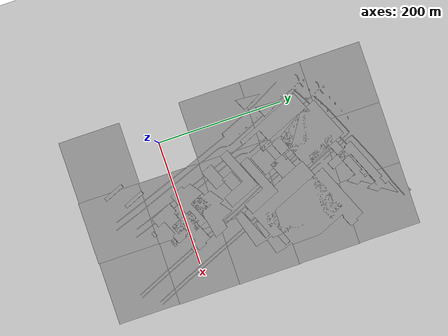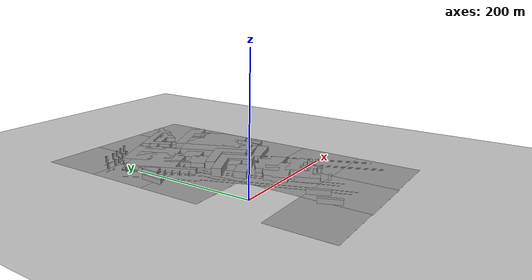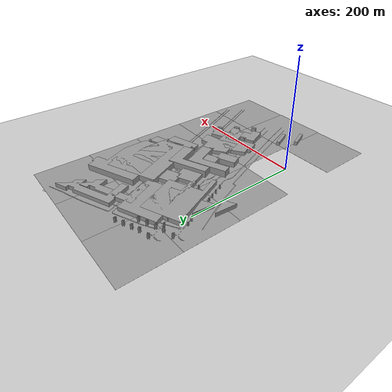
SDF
<sdf version="1.6">
 <world name="default">
  <light name="sun" type="directional">
   <pose>0 0 10 0 -0 0</pose>
   <diffuse>0.8 0.8 0.8 1</diffuse>
   <specular>0.2 0.2 0.2 1</specular>
   <attenuation>
    <range>1000</range>
    <constant>0.9</constant>
    <linear>0.01</linear>
    <quadratic>0.001</quadratic>
   </attenuation>
   <direction>-0.5 0.1 -0.9</direction>
  </light>
  <model name="ground_plane">
   <static>1</static>
   <link name="link">
    <collision name="collision">
     <geometry><plane><normal>0 0 1</normal><size>100 100</size></plane></geometry>
     <surface>
      <contact><collide_bitmask>65535</collide_bitmask></contact>
      <friction><ode><mu>100</mu><mu2>50</mu2></ode></friction>
     </surface>
    </collision>
    <visual name="visual">
     <cast_shadows>0</cast_shadows>
     <geometry><plane><normal>0 0 1</normal><size>100 100</size></plane></geometry>
     <material>
      <script><uri>file://media/materials/scripts/gazebo.material</uri><name>Gazebo/Grey</name></script>
     </material>
    </visual>
   </link>
  </model>
  <gravity>0 0 -9.8</gravity>
  <magnetic_field>6e-06 2.3e-05 -4.2e-05</magnetic_field>
  <atmosphere type="adiabatic"/>
  <physics name="default_physics" default="0" type="ode">
   <max_step_size>0.001</max_step_size>
   <real_time_factor>1</real_time_factor>
   <real_time_update_rate>1000</real_time_update_rate>
  </physics>
  <scene><ambient>0.4 0.4 0.4 1</ambient><background>0.7 0.7 0.7 1</background><shadows>1</shadows></scene>
  <audio><device>default</device></audio>
  <spherical_coordinates>
   <surface_model>EARTH_WGS84</surface_model>
   <latitude_deg>0</latitude_deg>
   <longitude_deg>0</longitude_deg>
   <elevation>0</elevation>
   <heading_deg>0</heading_deg>
  </spherical_coordinates>
  <model name="ground_plane_0">
   <static>1</static>
   <link name="link">
    <collision name="collision">
     <geometry><plane><normal>0 0 1</normal><size>100 100</size></plane></geometry>
     <surface>
      <contact><collide_bitmask>65535</collide_bitmask></contact>
      <friction><ode><mu>100</mu><mu2>50</mu2></ode></friction>
     </surface>
    </collision>
    <visual name="visual">
     <cast_shadows>0</cast_shadows>
     <geometry><plane><normal>0 0 1</normal><size>100 100</size></plane></geometry>
     <material>
      <script><uri>file://media/materials/scripts/gazebo.material</uri><name>Gazebo/Grey</name></script>
     </material>
    </visual>
   </link>
   <pose>0.119085 98.7504 0 0 -0 0</pose>
  </model>
  <model name="ground_plane_1">
   <static>1</static>
   <link name="link">
    <collision name="collision">
     <geometry><plane><normal>0 0 1</normal><size>100 100</size></plane></geometry>
     <surface>
      <contact><collide_bitmask>65535</collide_bitmask></contact>
      <friction><ode><mu>100</mu><mu2>50</mu2></ode></friction>
     </surface>
    </collision>
    <visual name="visual">
     <cast_shadows>0</cast_shadows>
     <geometry><plane><normal>0 0 1</normal><size>100 100</size></plane></geometry>
     <material>
      <script><uri>file://media/materials/scripts/gazebo.material</uri><name>Gazebo/Grey</name></script>
     </material>
    </visual>
   </link>
   <pose>0.157574 198.301 0 0 -0 0</pose>
  </model>
  <model name="ground_plane_2">
   <static>1</static>
   <link name="link">
    <collision name="collision">
     <geometry><plane><normal>0 0 1</normal><size>100 100</size></plane></geometry>
     <surface>
      <contact><collide_bitmask>65535</collide_bitmask></contact>
      <friction><ode><mu>100</mu><mu2>50</mu2></ode></friction>
     </surface>
    </collision>
    <visual name="visual">
     <cast_shadows>0</cast_shadows>
     <geometry><plane><normal>0 0 1</normal><size>100 100</size></plane></geometry>
     <material>
      <script><uri>file://media/materials/scripts/gazebo.material</uri><name>Gazebo/Grey</name></script>
     </material>
    </visual>
   </link>
   <pose>100.31 198.23 0 0 -0 0</pose>
  </model>
  <model name="ground_plane_3">
   <static>1</static>
   <link name="link">
    <collision name="collision">
     <geometry><plane><normal>0 0 1</normal><size>100 100</size></plane></geometry>
     <surface>
      <contact><collide_bitmask>65535</collide_bitmask></contact>
      <friction><ode><mu>100</mu><mu2>50</mu2></ode></friction>
     </surface>
    </collision>
    <visual name="visual">
     <cast_shadows>0</cast_shadows>
     <geometry><plane><normal>0 0 1</normal><size>100 100</size></plane></geometry>
     <material>
      <script><uri>file://media/materials/scripts/gazebo.material</uri><name>Gazebo/Grey</name></script>
     </material>
    </visual>
   </link>
   <pose>100.14 98.3684 0 0 -0 0</pose>
  </model>
  <model name="ground_plane_4">
   <static>1</static>
   <link name="link">
    <collision name="collision">
     <geometry><plane><normal>0 0 1</normal><size>100 100</size></plane></geometry>
     <surface>
      <contact><collide_bitmask>65535</collide_bitmask></contact>
      <friction><ode><mu>100</mu><mu2>50</mu2></ode></friction>
     </surface>
    </collision>
    <visual name="visual">
     <cast_shadows>0</cast_shadows>
     <geometry><plane><normal>0 0 1</normal><size>100 100</size></plane></geometry>
     <material>
      <script><uri>file://media/materials/scripts/gazebo.material</uri><name>Gazebo/Grey</name></script>
     </material>
    </visual>
   </link>
   <pose>99.8443 -0.827048 0 0 -0 0</pose>
  </model>
  <model name="ground_plane_5">
   <static>1</static>
   <link name="link">
    <collision name="collision">
     <geometry><plane><normal>0 0 1</normal><size>100 100</size></plane></geometry>
     <surface>
      <contact><collide_bitmask>65535</collide_bitmask></contact>
      <friction><ode><mu>100</mu><mu2>50</mu2></ode></friction>
     </surface>
    </collision>
    <visual name="visual">
     <cast_shadows>0</cast_shadows>
     <geometry><plane><normal>0 0 1</normal><size>100 100</size></plane></geometry>
     <material>
      <script><uri>file://media/materials/scripts/gazebo.material</uri><name>Gazebo/Grey</name></script>
     </material>
    </visual>
   </link>
   <pose>0.076266 296.645 0 0 -0 0</pose>
  </model>
  <model name="ground_plane_6">
   <static>1</static>
   <link name="link">
    <collision name="collision">
     <geometry><plane><normal>0 0 1</normal><size>100 100</size></plane></geometry>
     <surface>
      <contact><collide_bitmask>65535</collide_bitmask></contact>
      <friction><ode><mu>100</mu><mu2>50</mu2></ode></friction>
     </surface>
    </collision>
    <visual name="visual">
     <cast_shadows>0</cast_shadows>
     <geometry><plane><normal>0 0 1</normal><size>100 100</size></plane></geometry>
     <material>
      <script><uri>file://media/materials/scripts/gazebo.material</uri><name>Gazebo/Grey</name></script>
     </material>
    </visual>
   </link>
   <pose>99.4067 296.539 0 0 -0 0</pose>
  </model>
  <model name="ground_plane_7">
   <static>1</static>
   <link name="link">
    <collision name="collision">
     <geometry><plane><normal>0 0 1</normal><size>100 100</size></plane></geometry>
     <surface>
      <contact><collide_bitmask>65535</collide_bitmask></contact>
      <friction><ode><mu>100</mu><mu2>50</mu2></ode></friction>
     </surface>
    </collision>
    <visual name="visual">
     <cast_shadows>0</cast_shadows>
     <geometry><plane><normal>0 0 1</normal><size>100 100</size></plane></geometry>
     <material>
      <script><uri>file://media/materials/scripts/gazebo.material</uri><name>Gazebo/Grey</name></script>
     </material>
    </visual>
   </link>
   <pose>198.816 296.471 0 0 -0 0</pose>
  </model>
  <model name="ground_plane_8">
   <static>1</static>
   <link name="link">
    <collision name="collision">
     <geometry><plane><normal>0 0 1</normal><size>100 100</size></plane></geometry>
     <surface>
      <contact><collide_bitmask>65535</collide_bitmask></contact>
      <friction><ode><mu>100</mu><mu2>50</mu2></ode></friction>
     </surface>
    </collision>
    <visual name="visual">
     <cast_shadows>0</cast_shadows>
     <geometry><plane><normal>0 0 1</normal><size>100 100</size></plane></geometry>
     <material>
      <script><uri>file://media/materials/scripts/gazebo.material</uri><name>Gazebo/Grey</name></script>
     </material>
    </visual>
   </link>
   <pose>199.561 197.217 0 0 -0 0</pose>
  </model>
  <model name="ground_plane_9">
   <static>1</static>
   <link name="link">
    <collision name="collision">
     <geometry><plane><normal>0 0 1</normal><size>100 100</size></plane></geometry>
     <surface>
      <contact><collide_bitmask>65535</collide_bitmask></contact>
      <friction><ode><mu>100</mu><mu2>50</mu2></ode></friction>
     </surface>
    </collision>
    <visual name="visual">
     <cast_shadows>0</cast_shadows>
     <geometry><plane><normal>0 0 1</normal><size>100 100</size></plane></geometry>
     <material>
      <script><uri>file://media/materials/scripts/gazebo.material</uri><name>Gazebo/Grey</name></script>
     </material>
    </visual>
   </link>
   <pose>200.091 98.6968 0 0 -0 0</pose>
  </model>
  <model name="ground_plane_10">
   <static>1</static>
   <link name="link">
    <collision name="collision">
     <geometry><plane><normal>0 0 1</normal><size>100 100</size></plane></geometry>
     <surface>
      <contact><collide_bitmask>65535</collide_bitmask></contact>
      <friction><ode><mu>100</mu><mu2>50</mu2></ode></friction>
     </surface>
    </collision>
    <visual name="visual">
     <cast_shadows>0</cast_shadows>
     <geometry><plane><normal>0 0 1</normal><size>100 100</size></plane></geometry>
     <material>
      <script><uri>file://media/materials/scripts/gazebo.material</uri><name>Gazebo/Grey</name></script>
     </material>
    </visual>
   </link>
   <pose>199.796 -0.195624 0 0 -0 0</pose>
  </model>
  <model name="Modelwereld2">
   <link name="link_0">
    <inertial>
     <mass>1</mass>
     <inertia>
      <ixx>0.166667</ixx>
      <ixy>0</ixy>
      <ixz>0</ixz>
      <iyy>0.166667</iyy>
      <iyz>0</iyz>
      <izz>0.166667</izz>
     </inertia>
    </inertial>
    <pose>0.000301 4.7e-05 0 0 -0 0</pose>
    <visual name="visual">
     <geometry>
      <mesh><uri>/home/roan/Documents/Minipresentatie/LwStreetCleanNN2.stl</uri><scale>1 1 1</scale></mesh>
     </geometry>
     <material>
      <lighting>1</lighting>
      <script><uri>file://media/materials/scripts/gazebo.material</uri><name>Gazebo/Grey</name></script>
     </material>
    </visual>
    <collision name="collision">
     <geometry>
      <mesh><uri>/home/roan/Documents/Minipresentatie/LwStreetCleanNN2.stl</uri><scale>1 1 1</scale></mesh>
     </geometry>
     <surface>
      <friction>
       <ode><mu>1</mu><mu2>1</mu2><fdir1>0 0 0</fdir1><slip1>0</slip1><slip2>0</slip2></ode>
       <torsional>
        <coefficient>1</coefficient>
        <patch_radius>0</patch_radius>
        <surface_radius>0</surface_radius>
        <use_patch_radius>1</use_patch_radius>
        <ode><slip>0</slip></ode>
       </torsional>
      </friction>
      <bounce><restitution_coefficient>0</restitution_coefficient><threshold>1e+06</threshold></bounce>
      <contact>
       <collide_without_contact>0</collide_without_contact>
       <collide_without_contact_bitmask>1</collide_without_contact_bitmask>
       <collide_bitmask>1</collide_bitmask>
       <ode>
        <soft_cfm>0</soft_cfm>
        <soft_erp>0.2</soft_erp>
        <kp>1e+13</kp>
        <kd>1</kd>
        <max_vel>0.01</max_vel>
        <min_depth>0</min_depth>
       </ode>
       <bullet>
        <split_impulse>1</split_impulse>
        <split_impulse_penetration_threshold>-0.01</split_impulse_penetration_threshold>
        <soft_cfm>0</soft_cfm>
        <soft_erp>0.2</soft_erp>
        <kp>1e+13</kp>
        <kd>1</kd>
       </bullet>
      </contact>
     </surface>
    </collision>
   </link>
   <static>1</static>
   <pose>302.811 97.0851 0 0 -0 0</pose>
  </model>
  <model name="ground_plane_11">
   <static>1</static>
   <link name="link">
    <collision name="collision">
     <geometry><plane><normal>0 0 1</normal><size>100 100</size></plane></geometry>
     <surface>
      <contact><collide_bitmask>65535</collide_bitmask></contact>
      <friction><ode><mu>100</mu><mu2>50</mu2></ode></friction>
     </surface>
    </collision>
    <visual name="visual">
     <cast_shadows>0</cast_shadows>
     <geometry><plane><normal>0 0 1</normal><size>100 100</size></plane></geometry>
     <material>
      <script><uri>file://media/materials/scripts/gazebo.material</uri><name>Gazebo/Grey</name></script>
     </material>
    </visual>
   </link>
   <pose>199.172 -99.3014 0 0 -0 0</pose>
  </model>
  <model name="ground_plane_12">
   <static>1</static>
   <link name="link">
    <collision name="collision">
     <geometry><plane><normal>0 0 1</normal><size>100 100</size></plane></geometry>
     <surface>
      <contact><collide_bitmask>65535</collide_bitmask></contact>
      <friction><ode><mu>100</mu><mu2>50</mu2></ode></friction>
     </surface>
    </collision>
    <visual name="visual">
     <cast_shadows>0</cast_shadows>
     <geometry><plane><normal>0 0 1</normal><size>100 100</size></plane></geometry>
     <material>
      <script><uri>file://media/materials/scripts/gazebo.material</uri><name>Gazebo/Grey</name></script>
     </material>
    </visual>
   </link>
   <pose>99.6516 -100.235 0 0 -0 0</pose>
  </model>
  <model name="ground_plane_13">
   <static>1</static>
   <link name="link">
    <collision name="collision">
     <geometry><plane><normal>0 0 1</normal><size>100 100</size></plane></geometry>
     <surface>
      <contact><collide_bitmask>65535</collide_bitmask></contact>
      <friction><ode><mu>100</mu><mu2>50</mu2></ode></friction>
     </surface>
    </collision>
    <visual name="visual">
     <cast_shadows>0</cast_shadows>
     <geometry><plane><normal>0 0 1</normal><size>100 100</size></plane></geometry>
     <material>
      <script><uri>file://media/materials/scripts/gazebo.material</uri><name>Gazebo/Grey</name></script>
     </material>
    </visual>
   </link>
   <pose>0.321798 -99.2661 0 0 -0 0</pose>
  </model>
  <model name="Untitled">
   <link name="link_0">
    <inertial>
     <mass>1</mass>
     <inertia>
      <ixx>0.166667</ixx>
      <ixy>0</ixy>
      <ixz>0</ixz>
      <iyy>0.166667</iyy>
      <iyz>0</iyz>
      <izz>0.166667</izz>
     </inertia>
    </inertial>
    <pose>0.000232 4.7e-05 0 0 -0 0</pose>
    <visual name="visual">
     <geometry>
      <mesh>
       <uri>/home/wouter/catkin_ws/src/SD-TwizyModel/streetdrone_model/sd_bringup/worlds/LwStreetCleanNN2.stl</uri>
       <scale>1 1 1</scale>
      </mesh>
     </geometry>
     <material>
      <lighting>1</lighting>
      <script><uri>file://media/materials/scripts/gazebo.material</uri><name>Gazebo/Grey</name></script>
     </material>
    </visual>
    <collision name="collision">
     <geometry>
      <mesh>
       <uri>/home/wouter/catkin_ws/src/SD-TwizyModel/streetdrone_model/sd_bringup/worlds/LwStreetCleanNN2.stl</uri>
       <scale>1 1 1</scale>
      </mesh>
     </geometry>
     <surface>
      <friction>
       <ode><mu>1</mu><mu2>1</mu2><fdir1>0 0 0</fdir1><slip1>0</slip1><slip2>0</slip2></ode>
       <torsional>
        <coefficient>1</coefficient>
        <patch_radius>0</patch_radius>
        <surface_radius>0</surface_radius>
        <use_patch_radius>1</use_patch_radius>
        <ode><slip>0</slip></ode>
       </torsional>
      </friction>
      <bounce><restitution_coefficient>0</restitution_coefficient><threshold>1e+06</threshold></bounce>
      <contact>
       <collide_without_contact>0</collide_without_contact>
       <collide_without_contact_bitmask>1</collide_without_contact_bitmask>
       <collide_bitmask>1</collide_bitmask>
       <ode>
        <soft_cfm>0</soft_cfm>
        <soft_erp>0.2</soft_erp>
        <kp>1e+13</kp>
        <kd>1</kd>
        <max_vel>0.01</max_vel>
        <min_depth>0</min_depth>
       </ode>
       <bullet>
        <split_impulse>1</split_impulse>
        <split_impulse_penetration_threshold>-0.01</split_impulse_penetration_threshold>
        <soft_cfm>0</soft_cfm>
        <soft_erp>0.2</soft_erp>
        <kp>1e+13</kp>
        <kd>1</kd>
       </bullet>
      </contact>
     </surface>
    </collision>
   </link>
   <static>1</static>
   <pose>282.612 70.5296 0 0 -0 0</pose>
  </model>
 </world>
</sdf>
